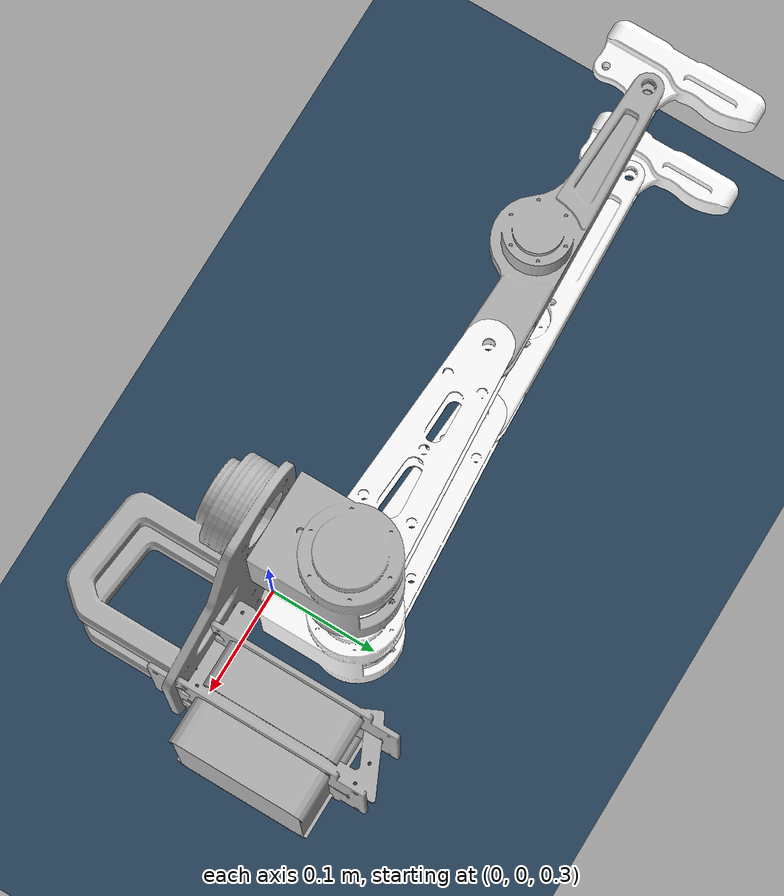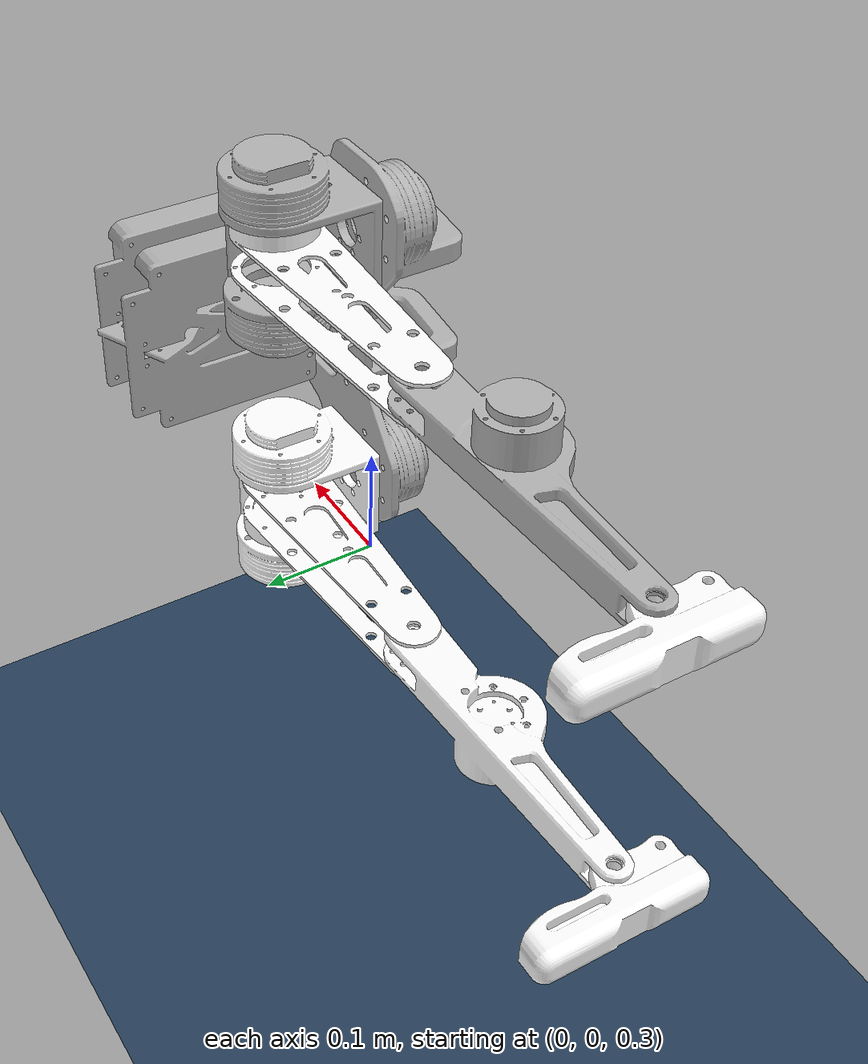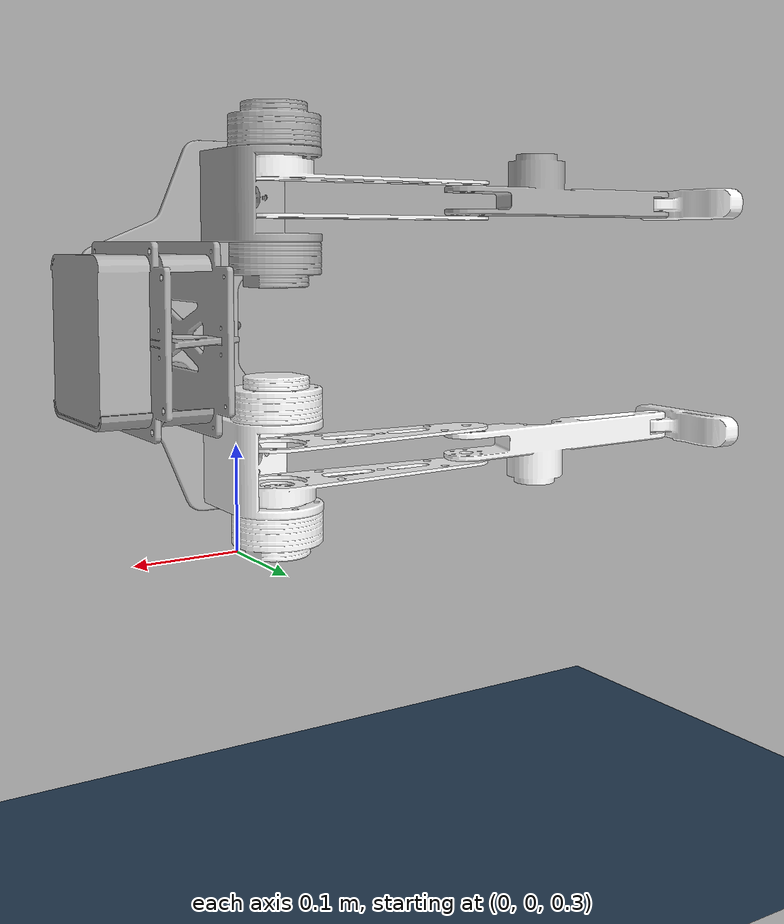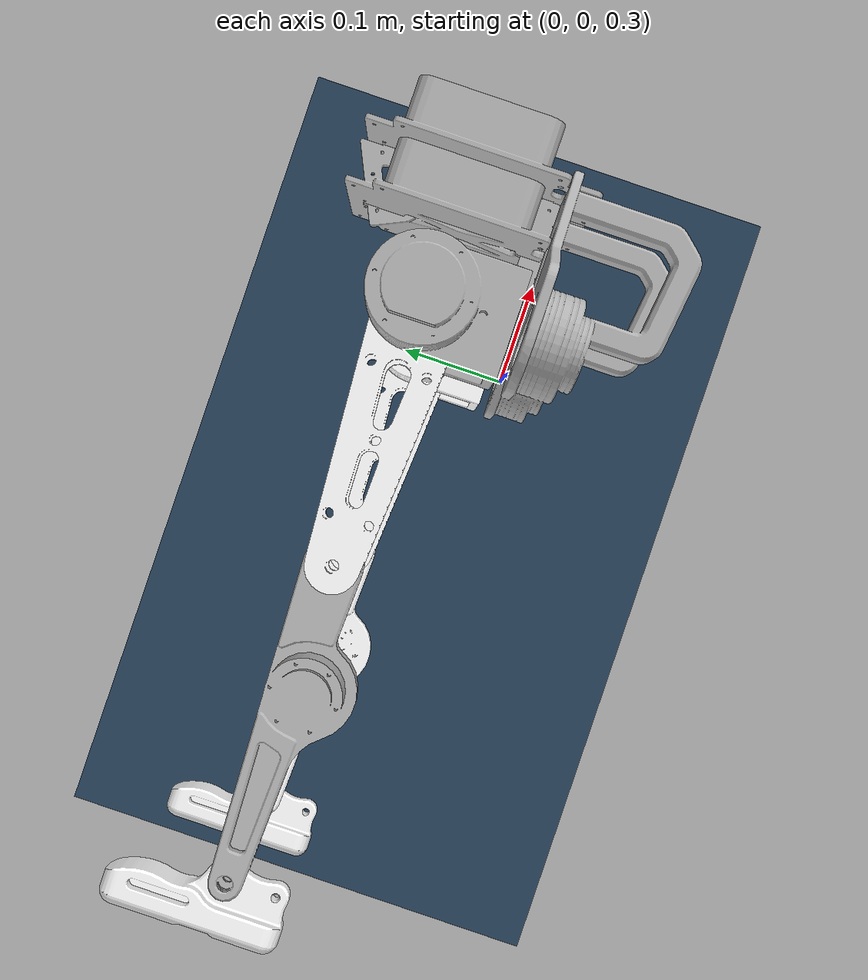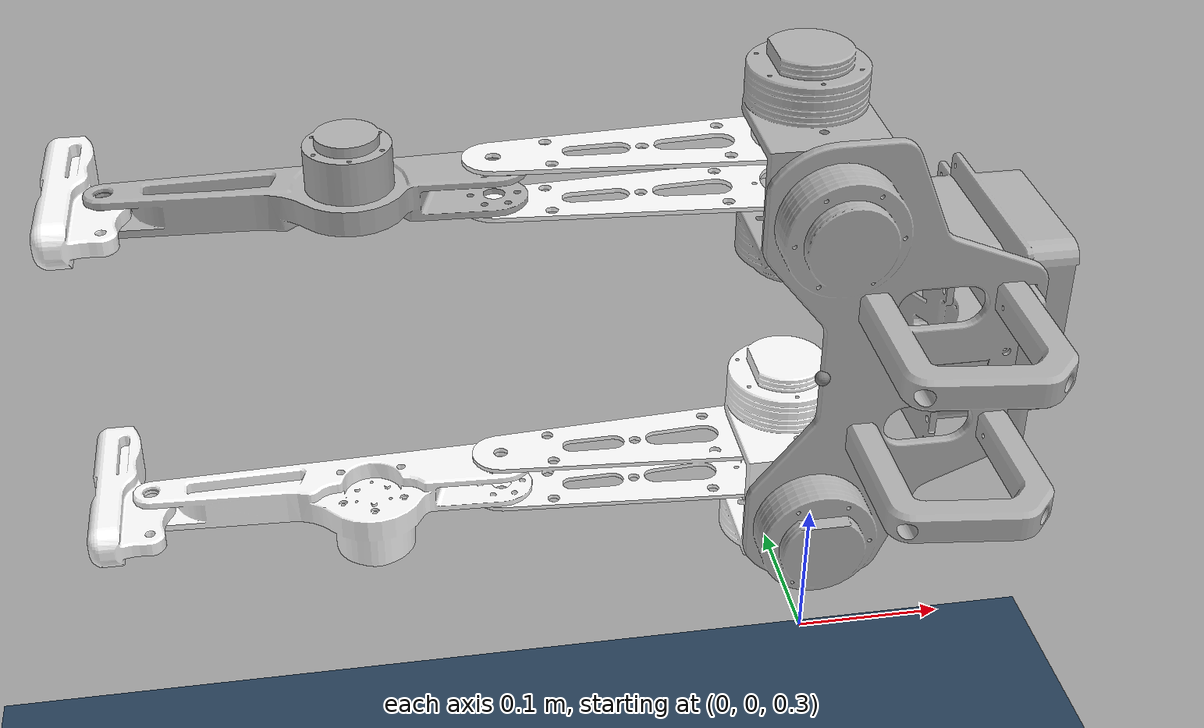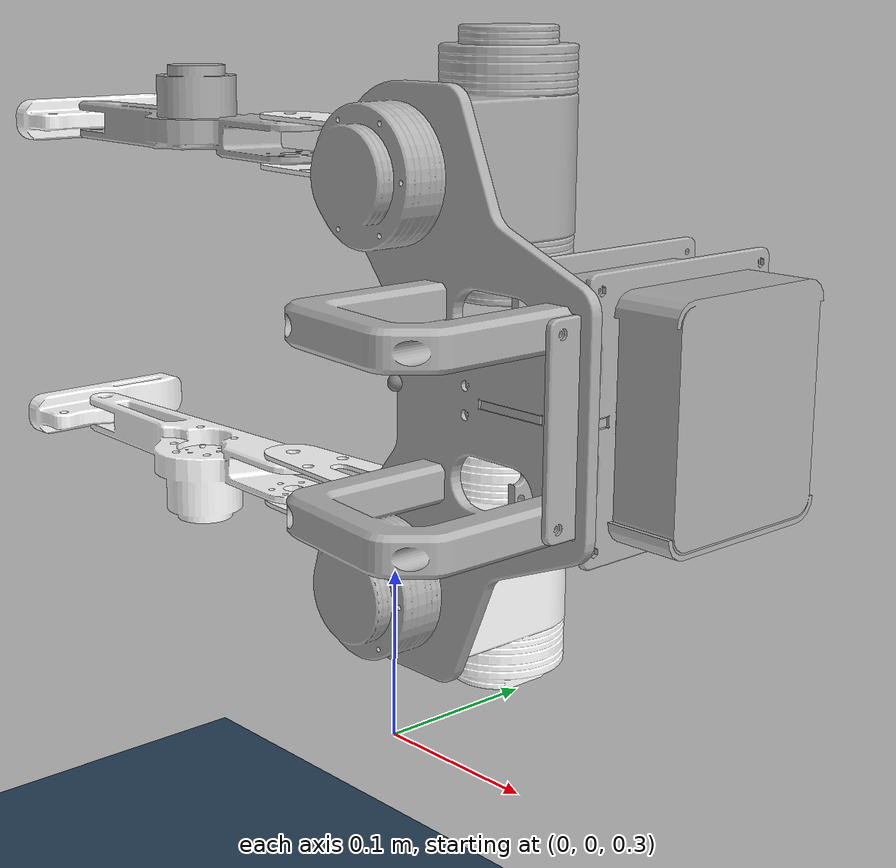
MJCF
<mujoco model="rere1">
  <compiler angle="radian" meshdir="assets_24_05_25" texturedir="assets_24_05_25"/>
  <size njmax="500" nconmax="100" />
  <option cone="elliptic" impratio="10"/>

  <default>
    <joint damping="0.01" armature="0.045" frictionloss="0.02"/>
    <position kp="10.1" kv="3" ctrlrange="-3.141592 3.141592" forcerange="-9 9"/>
  </default>

  <asset>
    <mesh name="base_link" file="base_link.STL"/>
    <mesh name="HR" file="r_hip.STL"/>
    <mesh name="TR" file="r_thigh.STL"/>
    <mesh name="SR" file="r_shin.STL"/>
    <mesh name="FR" file="r_foot.STL"/>
    <mesh name="HL" file="l_hip.STL"/>
    <mesh name="TL" file="l_thigh.STL"/>
    <mesh name="SL" file="l_shin.STL"/>
    <mesh name="FL" file="l_foot.STL"/>
    <mesh name="pcpc" file="pcpc.STL"/>

    <texture type="2d" name="trunk_A1" file="trunk_A1.png"/>
    <material name="carbonfibre" texture="trunk_A1" specular="0" shininess="0.25"/>

    <material name="dark" specular="0" shininess="0.25" rgba="0.2 0.2 0.2 1"/>
    <texture name="grid" type="2d" builtin="checker" width="512" height="512" rgb1=".1 .2 .3" rgb2=".2 .3 .4"/>
    <material name="grid" texture="grid" texrepeat="1 1" texuniform="true" reflectance=".2"/>
  </asset>

  <visual>
	  <headlight diffuse="0.6 0.6 0.6" ambient="0.3 0.3 0.3" specular="0 0 0"/>
	  <global azimuth="-90"/>
    <scale forcewidth="0.035" contactwidth="0.1" contactheight="0.04" com="0.2" />
    <rgba com="0.502 1 0 0.5" contactpoint="1 1 0.6 0.4" contactforce="0.98 0.4 0.4 0.7" />
  </visual>

  <statistic extent="1" center="0 0 .3"/>

  <worldbody>
    <light pos="0 0 1.5" dir="0 0 -1" diffuse="0.5 0.5 0.5" specular="0.3 0.3 0.3" directional="true" castshadow="false"/>
    <geom type="plane" size="10 10 .01" material="grid"/>
    <body name="pelvis" pos = "0 0 .51" quat = "0 1 0 1">
      <freejoint/>
      <site name="head" rgba="1 0 0 1" pos="0.0 -0.1 0.0" group="5"/>
      <inertial pos="1.18905526751672E-07 0.0199079408972117 0.0227735561273914" quat="0.0 -0.0 0.0 -1.0" mass="1.11709596462043" diaginertia="0.00137363175955222 0.00329356351085876 0.00246315584857968"/>
      <geom type="mesh" rgba="0.698039 0.698039 0.698039 1" mesh="base_link"/>
      <body name="pcpc">
        <inertial pos="0.00018214 -0.08354 0.13596" quat="0 0 0 1" diaginertia="0.0015475 0.00164806 0.00293764" mass="0.9336"/>
        <geom pos="0.053538 -0.13241 0.13518" quat="0.707105 0.707108 0 0" type="mesh" rgba="0.698039 0.698039 0.698039 1" mesh="pcpc"/>
      </body>
      <site name="torso"/>
      <body name="HR" pos="-0.116 -0.0835 0" quat="0.707107 0.707107 0 0">
        <inertial pos="1.92266e-06 0.000807041 -0.00558798" quat="0.992283 -0.123719 0.000367317 -0.00828323" mass="0.802878" diaginertia="0.000696074 0.000568368 0.000524716"/>
        <joint name="HR" pos="0 0 0" axis="0 0 1" limited="false"/>
        <geom type="mesh" rgba="1 1 1 1" mesh="HR"/>
        <body name="TR">
          <inertial pos="-0.0125479 -0.0498231 0" quat="0.707107 0.707107 0 0" mass="0.111295" diaginertia="0.000295662 0.000266321 3.31281e-05"/>
          <joint name="TR" pos="0 0 0" axis="1 0 0" limited="false"/>
          <geom type="mesh" rgba="1 1 1 1" mesh="TR"/>
          <body name="SR" pos="0 -0.2 0">
            <inertial pos="-0.0120084 -0.0991664 -0.00748581" quat="0.709985 0.70347 0.0225839 -0.0232607" mass="0.364976" diaginertia="0.000771919 0.000746321 0.000116946"/>
            <joint name="SR" pos="0 0 0" axis="-1 0 0" limited="false"/>
            <geom type="mesh" rgba="1 1 1 1" mesh="SR"/>
            <body name="FR" pos="0 -0.24 0" euler="-1.57 0 0">
              <inertial pos="0.000770315 -0.0232508 0.0153436" quat="0.999757 0.0220651 -1.57926e-06 0.00014354" mass="0.109371" diaginertia="0.00016609 0.000163589 1.49358e-05"/>
              <joint name="FR" pos="0 0 0" axis="1 0 0" limited="true" range="-0.6 0.6" damping="0.085" frictionloss="0.16" armature="0.03"/>
              <geom name = "FR" type="mesh" rgba="1 1 1 1" euler="1.57 0 0" mesh="FR"/>
              <site name="right_foot" rgba="0 1 0 0.5" pos="0.0 0.0 -0.04" group="5"/>
              <site name="RB" rgba="1 0 0 1" pos="0 0.04 -0.04" type="cylinder" size="0.05" group="5"/>
              <site name="RF" rgba="1 0 0 1" pos="0 -0.04 -0.04" type="cylinder" size="0.05" group="5"/>
            </body>
          </body>
        </body>
      </body>
      <body name="HL" pos="0.116 -0.0835 0" quat="0.707107 0.707107 0 0">
        <inertial pos="1.9227e-06 0.00080704 -0.005588" quat="0.992282 -0.123726 0.00036738 -0.0082831" mass="0.80288" diaginertia="0.000696075 0.000568367 0.000524718"/>
        <joint name="HL" pos="0 0 0" axis="0 0 -1" limited="false"/>
        <geom type="mesh" rgba="0.69804 0.69804 0.69804 1" mesh="HL"/>
        <body name="TL">
          <inertial pos="0.012548 -0.049823 0" quat="0.707107 0.707107 0 0" mass="0.1113" diaginertia="0.00029566 0.00026632 3.3128e-05"/>
          <joint name="TL" pos="0 0 0" axis="1 0 0" limited="false"/>
          <geom type="mesh" rgba="1 1 1 1" mesh="TL"/>
          <body name="SL" pos="0 -0.2 0">
            <inertial pos="0.011708 -0.099166 -0.0074858" quat="0.709985 0.70347 -0.0225809 0.0232577" mass="0.36498" diaginertia="0.000771918 0.000746316 0.000116946"/>
            <joint name="SL" pos="0 0 0" axis="-1 0 0" limited="false"/>
            <geom type="mesh" rgba="0.69804 0.69804 0.69804 1" mesh="SL"/>
            <body name="FL" pos="0 -0.24 0" euler="-1.57 0 0">
              <inertial pos="-0.0012297 -0.023251 0.015344" quat="0.999757 0.022065 -1.57893e-06 0.000143526" mass="0.10937" diaginertia="0.00016609 0.000163589 1.49356e-05"/>
              <joint name="FL" pos="0 0 0" axis="-1 0 0" limited="true" range="-0.6 0.6" damping="0.085" frictionloss="0.16" armature="0.03"/>
              <geom name = "FL" type="mesh" rgba="1 1 1 1" euler="1.57 0 0" mesh="FL"/>
              <site name="left_foot" rgba="1 0 0 1" pos="0 0 -0.04" group="5"/>
              <site name="LB" rgba="1 0 0 1" pos="0 0.04 -0.04" type="cylinder" size="0.05" group="5"/>
              <site name="LF" rgba="1 0 0 1" pos="0 -0.04 -0.04" type="cylinder" size="0.05"  group="5"/>
            </body>
          </body>
        </body>
      </body>
    </body>
  </worldbody>
  <actuator>
    <position name="hipr_act" joint="HR"/>
    <position name="thighr_act" joint="TR"/>
    <position name="shinr_act" joint="SR"/>
    <position name="footr_act" joint="FR"/>
    <position name="hipl_act" joint="HL"/>
    <position name="thighl_act" joint="TL"/>
    <position name="shinl_act" joint="SL"/>
    <position name="footl_act" joint="FL"/>
  </actuator>
</mujoco>
